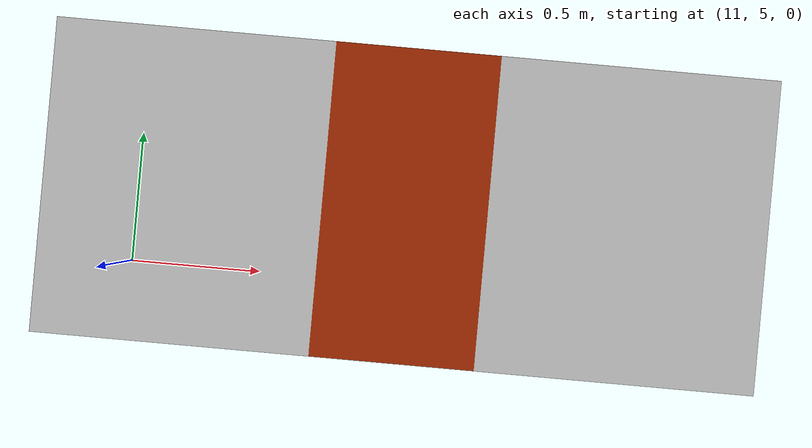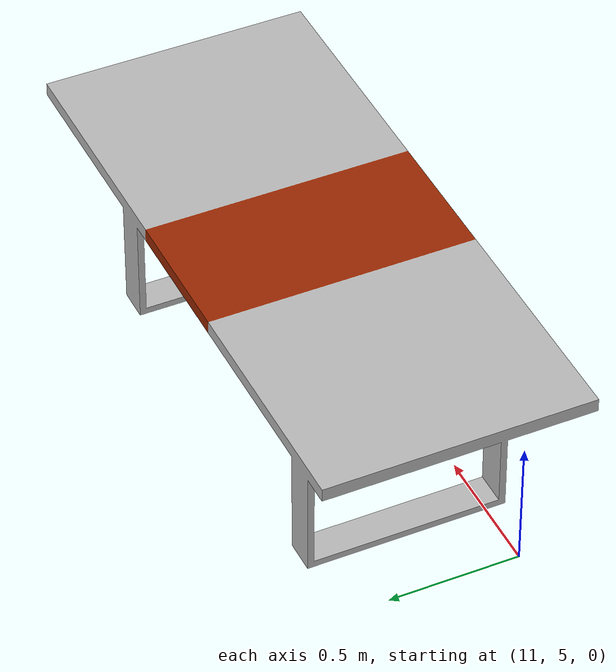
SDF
<?xml version="1.0" ?>
<sdf version="1.4">
  <model name="dining_table">
    <link name="link">
      <visual name="visual">
        <pose>0 0 0 0 0 0</pose>
        <geometry>
          <mesh>
            <uri>model://dining_table/meshes/dining_table.dae</uri>
          </mesh>
        </geometry>
      </visual>
    </link>
    <static>1</static>
  </model>
</sdf>
